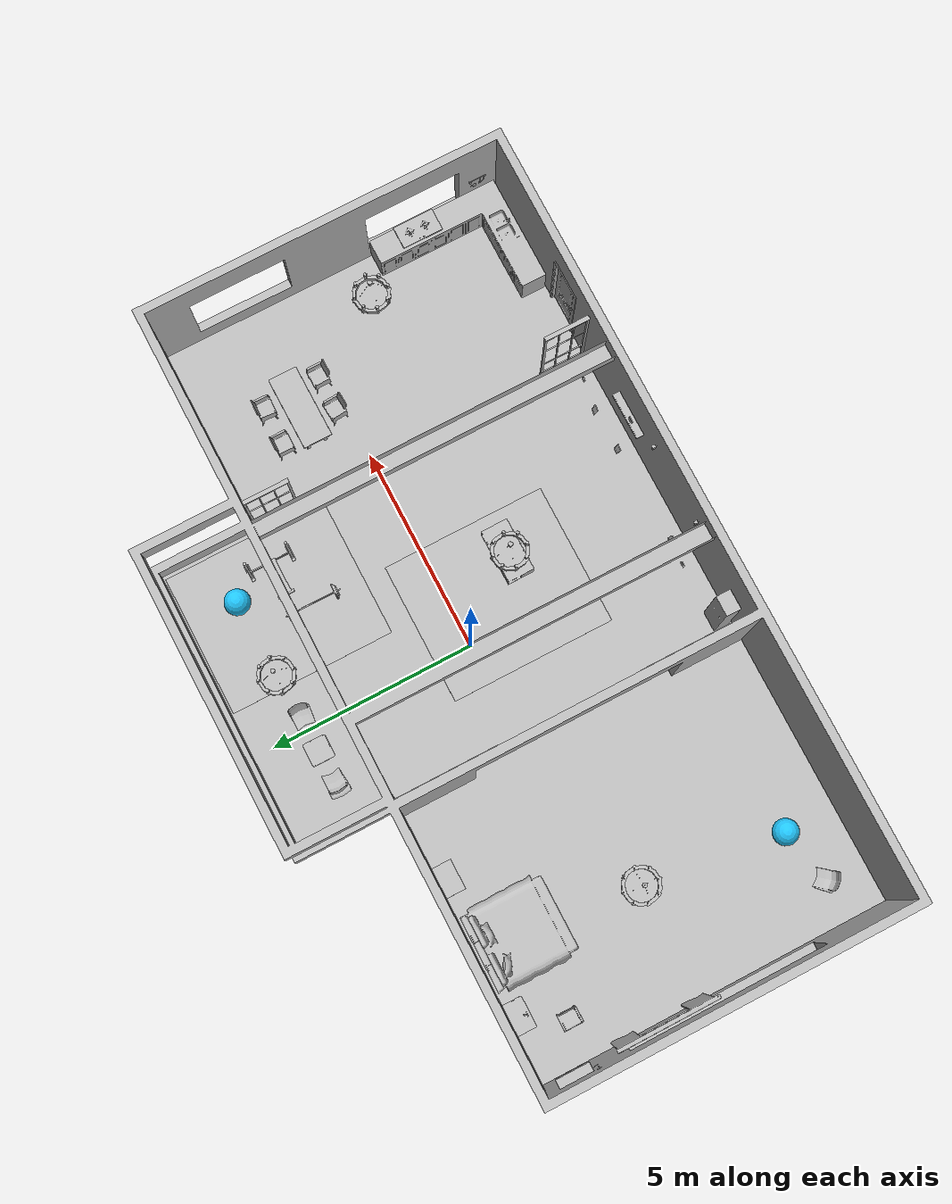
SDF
<sdf version="1.11">
 <world name="default">
  <plugin filename="gz-sim-physics-system" name="gz::sim::systems::Physics"/>
  <plugin filename="gz-sim-user-commands-system" name="gz::sim::systems::UserCommands"/>
  <plugin filename="gz-sim-scene-broadcaster-system" name="gz::sim::systems::SceneBroadcaster"/>
  <plugin filename="gz-sim-sensors-system" name="gz::sim::systems::Sensors">
   <render_engine>ogre2</render_engine>
  </plugin>
  <plugin filename="gz-sim-imu-system" name="gz::sim::systems::Imu"/>
  <physics name="1ms" type="ignored">
   <max_step_size>0.005</max_step_size>
   <real_time_factor>1.0</real_time_factor>
  </physics>
  <model name="AirconditionerA_01_001">
   <static>true</static>
   <include><uri>model://aws_robomaker_residential_AirconditionerA_01</uri></include>
   <pose>-9.199410 2.411230 2.084544 0 -0 0</pose>
  </model>
  <model name="AirconditionerB_01_001">
   <static>true</static>
   <include><uri>model://aws_robomaker_residential_AirconditionerB_01</uri></include>
   <pose>-2.004656 -5.226610 0.003485 0 -0 0</pose>
  </model>
  <model name="Ball_01_001">
   <static>true</static>
   <include><uri>model://aws_robomaker_residential_Ball_01</uri></include>
   <pose>3.295503 4.225674 0.318684 0 -0 0</pose>
  </model>
  <model name="Ball_01_003">
   <static>true</static>
   <include><uri>model://aws_robomaker_residential_Ball_01</uri></include>
   <pose>-6.945503 -4.22174 0.318684 0 -0 0</pose>
  </model>
  <model name="Bed_01_001">
   <static>true</static>
   <include><uri>model://aws_robomaker_residential_Bed_01</uri></include>
   <pose>-6.165067 2.030560 -0.000010 0 -0 0</pose>
  </model>
  <model name="NightStand_01_001">
   <static>true</static>
   <include><uri>model://aws_robomaker_residential_NightStand_01</uri></include>
   <pose>-7.725510 2.860420 0.005258 -0.000002 0 0</pose>
  </model>
  <model name="NightStand_01_002">
   <static>true</static>
   <include><uri>model://aws_robomaker_residential_NightStand_01</uri></include>
   <pose>-4.407341 2.860420 0.005256 0 0.000002 0</pose>
  </model>
  <model name="Board_01_001">
   <static>true</static>
   <include><uri>model://aws_robomaker_residential_Board_01</uri></include>
   <pose>2.779073 -5.392703 1.538173 0 -0 0</pose>
  </model>
  <model name="ChairA_01_001">
   <static>true</static>
   <include><uri>model://aws_robomaker_residential_ChairA_01</uri></include>
   <pose>7.11516 0.209028 0.024685 1e-06 -0 -1.55607</pose>
  </model>
  <model name="ChairA_01_002">
   <static>true</static>
   <include><uri>model://aws_robomaker_residential_ChairA_01</uri></include>
   <pose>6.25506 0.219468 0.011308 0 0 -1.50414</pose>
  </model>
  <model name="ChairA_01_003">
   <static>true</static>
   <include><uri>model://aws_robomaker_residential_ChairA_01</uri></include>
   <pose>6.06678 1.68075 0.01 0 -0 1.56986</pose>
  </model>
  <model name="ChairA_01_004">
   <static>true</static>
   <include><uri>model://aws_robomaker_residential_ChairA_01</uri></include>
   <pose>7.00277 1.67074 0 0 -0 1.52363</pose>
  </model>
  <model name="ChairA_01_005">
   <static>true</static>
   <include><uri>model://aws_robomaker_residential_ChairA_01</uri></include>
   <pose>-8.270940 1.916650 0.036650 0 -0 0</pose>
  </model>
  <model name="ChairD_01_001">
   <static>true</static>
   <include><uri>model://aws_robomaker_residential_ChairD_01</uri></include>
   <pose>-1.380775 4.104456 0 0 -0 0</pose>
  </model>
  <model name="ChairD_01_002">
   <static>true</static>
   <include><uri>model://aws_robomaker_residential_ChairD_01</uri></include>
   <pose>0.325214 4.104456 0 0 -0 -3.138741</pose>
  </model>
  <model name="ChairD_01_003">
   <static>true</static>
   <include><uri>model://aws_robomaker_residential_ChairD_01</uri></include>
   <pose>-8.270775 -4.504456 0 0 -0 0.869673</pose>
  </model>
  <model name="Chandelier_01_001">
   <static>true</static>
   <include><uri>model://aws_robomaker_residential_Chandelier_01</uri></include>
   <pose>1.221061 4.155740 1.295000 0 -0 0</pose>
  </model>
  <model name="Chandelier_01_002">
   <static>true</static>
   <include><uri>model://aws_robomaker_residential_Chandelier_01</uri></include>
   <pose>-6.451061 -0.692040 1.810000 0 -0 0</pose>
  </model>
  <model name="Chandelier_01_003">
   <static>true</static>
   <include><uri>model://aws_robomaker_residential_Chandelier_01</uri></include>
   <pose>7.824061 -1.59 1.7510000 0 -0 0</pose>
  </model>
  <model name="Chandelier_01_004">
   <static>true</static>
   <include><uri>model://aws_robomaker_residential_Chandelier_01</uri></include>
   <pose>1.221061 -1.592040 1.7873000 0 -0 0</pose>
  </model>
  <model name="Carpet_01_001">
   <static>true</static>
   <include><uri>model://aws_robomaker_residential_Carpet_01</uri></include>
   <pose>0.785050 -1.106647 0.001106 0 -0 0</pose>
  </model>
  <model name="Carpet_01_002">
   <static>true</static>
   <include><uri>model://aws_robomaker_residential_Carpet_01</uri></include>
   <pose>2.854050 3.45 0.000585 0 -0 0</pose>
  </model>
  <model name="CoffeeTable_01_001">
   <static>true</static>
   <include><uri>model://aws_robomaker_residential_CoffeeTable_01</uri></include>
   <pose>1.512301 -1.733438 0.041983 0.000000 0.000000 0.01000</pose>
  </model>
  <model name="CookingBench_01_001">
   <include><uri>model://aws_robomaker_residential_CookingBench_01</uri></include>
   <pose>9.038383 -3.351140 0.903610 0 -0 3.137133</pose>
   <static>true</static>
  </model>
  <model name="Curtain_01_001">
   <static>true</static>
   <include><uri>model://aws_robomaker_residential_Curtain_01</uri></include>
   <pose>-9.172642 0.203760 0 0 -0 0</pose>
  </model>
  <model name="KitchenTable_01_001">
   <static>true</static>
   <include><uri>model://aws_robomaker_residential_KitchenTable_01</uri></include>
   <pose>6.55269 0.951173 -0.000006 0 -0 -1.564130</pose>
  </model>
  <model name="BalconyTable_01_001">
   <static>true</static>
   <include><uri>model://aws_robomaker_residential_BalconyTable_01</uri></include>
   <pose>-0.556240 4.111241 0 0 -0 0</pose>
  </model>
  <model name="Door_01_001">
   <static>true</static>
   <include><uri>model://aws_robomaker_residential_Door_01</uri></include>
   <pose>6.001449 -5.549002 0 0 -0 0</pose>
  </model>
  <model name="Dumbbell_01_001">
   <static>true</static>
   <include><uri>model://aws_robomaker_residential_Dumbbell_01</uri></include>
   <pose>2.512849 2.717787 0.002183 0 -0 0</pose>
  </model>
  <model name="FitnessEquipment_01_001">
   <static>true</static>
   <include><uri>model://aws_robomaker_residential_FitnessEquipment_01</uri></include>
   <pose>3.484720 3.169104 0.003168 0 -0 0</pose>
  </model>
  <model name="FoldingDoor_01_001">
   <static>true</static>
   <include><uri>model://aws_robomaker_residential_FoldingDoor_01</uri></include>
   <pose>-2.461096 1.844219 0.041881 0 -0 0</pose>
  </model>
  <model name="FoldingDoor_01_002">
   <static>true</static>
   <include><uri>model://aws_robomaker_residential_FoldingDoor_01</uri></include>
   <pose>-2.461096 -4.053320 0.041881 0 -0 0</pose>
  </model>
  <model name="Handle_01_001">
   <static>true</static>
   <include><uri>model://aws_robomaker_residential_Handle_01</uri></include>
   <pose>5.724 -5.523 0.9938 0 -0 -3.1415</pose>
  </model>
  <model name="HouseWallB_01_001">
   <static>true</static>
   <include><uri>model://aws_robomaker_residential_HouseWallB_01</uri></include>
  </model>
  <model name="FloorB_01_001">
   <static>true</static>
   <include><uri>model://aws_robomaker_residential_FloorB_01</uri></include>
  </model>
  <model name="FoldingDoor_02_001">
   <static>true</static>
   <include><uri>model://aws_robomaker_residential_FoldingDoor_02</uri></include>
   <pose>4.674231 2.46451 0 0 -0 3.14159</pose>
  </model>
  <model name="FoldingDoor_02_002">
   <static>true</static>
   <include><uri>model://aws_robomaker_residential_FoldingDoor_02</uri></include>
   <pose>4.8912 -4.84968 0 0 -0 0</pose>
  </model>
  <model name="KitchenCabinet_01_001">
   <static>true</static>
   <include><uri>model://aws_robomaker_residential_KitchenCabinet_01</uri></include>
   <pose>8.002009 -3.836509 0.012068 0 -0 -3.140001</pose>
  </model>
  <model name="KitchenUtensils_01_001">
   <static>true</static>
   <include><uri>model://aws_robomaker_residential_KitchenUtensils_01</uri></include>
   <pose>9.285478 -5.021261 1.141805 0 -0 0</pose>
  </model>
  <model name="LightC_01_001">
   <static>true</static>
   <include><uri>model://aws_robomaker_residential_LightC_01</uri></include>
   <pose>1.769567 -5.4443710 2.000000 0 -0 0</pose>
  </model>
  <model name="LightC_01_002">
   <static>true</static>
   <include><uri>model://aws_robomaker_residential_LightC_01</uri></include>
   <pose>-0.138245 -5.4443710 2.000000 0 -0 0</pose>
  </model>
  <model name="DeskPortraitA_01">
   <static>true</static>
   <include><uri>model://aws_robomaker_residential_DeskPortraitA_01</uri></include>
   <pose>-0.036864 -5.110156 0.498660 0 -0 2.927784</pose>
  </model>
  <model name="DeskPortraitA_02">
   <static>true</static>
   <include><uri>model://aws_robomaker_residential_DeskPortraitA_02</uri></include>
   <pose>2.046082 -1.892926 0.0703880 -0.018328 -0.000441 1.576216</pose>
  </model>
  <model name="DeskPortraitC_01">
   <static>true</static>
   <include><uri>model://aws_robomaker_residential_DeskPortraitC_01</uri></include>
   <pose>-7.746377 2.731075 0.694620 0.000488 -0.000359 -0.055499</pose>
  </model>
  <model name="DeskPortraitC_02">
   <static>true</static>
   <include><uri>model://aws_robomaker_residential_DeskPortraitC_02</uri></include>
   <pose>0.964613 -1.586951 0.127676 0.001614 -0.000545 -1.578699</pose>
  </model>
  <model name="DeskPortraitD_01">
   <static>true</static>
   <include><uri>model://aws_robomaker_residential_DeskPortraitD_01</uri></include>
   <pose>2.645560 -5.376225 1.573738 0 -0 -3.112826</pose>
  </model>
  <model name="DeskPortraitD_02">
   <static>true</static>
   <include><uri>model://aws_robomaker_residential_DeskPortraitD_02</uri></include>
   <pose>-0.589211 -5.109890 0.192145 -0.000015 -0.000174 -3.112544</pose>
  </model>
  <model name="DeskPortraitD_03">
   <static>true</static>
   <include><uri>model://aws_robomaker_residential_DeskPortraitD_03</uri></include>
   <pose>1.826729 -1.464881 0.126208 0.000010 0.000006 -3.114380</pose>
  </model>
  <model name="DeskPortraitD_04">
   <static>true</static>
   <include><uri>model://aws_robomaker_residential_DeskPortraitD_04</uri></include>
   <pose>4.302132 -5.176568 0.202496 0.007118 -0.000001 3.046683</pose>
  </model>
  <model name="DeskPortraitB_01">
   <static>true</static>
   <include><uri>model://aws_robomaker_residential_DeskPortraitB_01</uri></include>
   <pose>3.547376 -5.083898 -0.012660 -0.336622 -0.000001 3.046741</pose>
  </model>
  <model name="DeskPortraitB_02">
   <static>true</static>
   <include><uri>model://aws_robomaker_residential_DeskPortraitB_02</uri></include>
   <pose>2.486270 -5.102525 -0.012660 -0.336621 0.000000 3.046798</pose>
  </model>
  <light name="LivingRoom_CeilingLight_0" type="point">
   <pose>1.194296 4.155759 2.2 0 -0 0</pose>
   <diffuse>0.5 0.5 0.5 1</diffuse>
   <specular>0.1 0.1 0.1 1</specular>
   <attenuation>
    <range>20</range>
    <constant>0.32</constant>
    <linear>0.01</linear>
    <quadratic>0.03</quadratic>
   </attenuation>
   <cast_shadows>0</cast_shadows>
   <direction>0 0 -1</direction>
  </light>
  <light name="LivingRoom_CeilingLight_1" type="point">
   <pose>1.194296 -1.589959 2.2 0 -0 0</pose>
   <diffuse>0.5 0.5 0.5 1</diffuse>
   <specular>0.1 0.1 0.1 1</specular>
   <attenuation>
    <range>20</range>
    <constant>0.05</constant>
    <linear>0.01</linear>
    <quadratic>0.09</quadratic>
   </attenuation>
   <cast_shadows>0</cast_shadows>
   <direction>0 0 -1</direction>
  </light>
  <light name="LivingRoom_WallLight_0" type="point">
   <pose>1.76956 -5.444370 2.2 0 -0 0</pose>
   <diffuse>0.24 0.24 0.24 1</diffuse>
   <specular>0.1 0.1 0.1 1</specular>
   <attenuation>
    <range>20</range>
    <constant>0.12</constant>
    <linear>0.00</linear>
    <quadratic>0.03</quadratic>
   </attenuation>
   <direction>0 0 -1</direction>
  </light>
  <light name="LivingRoom_WallLight_1" type="point">
   <pose>-0.13826 -5.444370 2.2 0 -0 0</pose>
   <diffuse>0.24 0.24 0.24 1</diffuse>
   <specular>0.1 0.1 0.1 1</specular>
   <attenuation>
    <range>20</range>
    <constant>0.12</constant>
    <linear>0.00</linear>
    <quadratic>0.03</quadratic>
   </attenuation>
   <direction>0 0 -1</direction>
  </light>
  <light name="TV_Light_0" type="point">
   <pose>0.8269 -4.939577 1.1 0 -0 0</pose>
   <diffuse>0.31372 0.31372 0.34901 1</diffuse>
   <specular>0.1 0.1 0.1 1</specular>
   <attenuation>
    <range>3</range>
    <constant>0.10</constant>
    <linear>0.04</linear>
    <quadratic>0.50</quadratic>
   </attenuation>
   <direction>0 0 -1</direction>
  </light>
  <light name="BedRoom_Portrait_Light_0" type="spot">
   <pose>-6.190379 -1.829697 1.5587 0.3 -0 0.0</pose>
   <diffuse>0.5 0.5 0.5 1</diffuse>
   <specular>0.1 0.1 0.1 1</specular>
   <attenuation>
    <range>20</range>
    <constant>0.50</constant>
    <linear>0.01</linear>
    <quadratic>0.00</quadratic>
   </attenuation>
   <spot><inner_angle>0.6</inner_angle><outer_angle>1.0</outer_angle><falloff>1.0</falloff></spot>
   <direction>0 0 -1</direction>
  </light>
  <light name="BedRoom_CeilingLight_0" type="point">
   <pose>-6.451061 -0.692040 2.000000 0 -0 0</pose>
   <diffuse>0.5 0.5 0.5 1</diffuse>
   <specular>0.1 0.1 0.1 1</specular>
   <attenuation>
    <range>20</range>
    <constant>0.32</constant>
    <linear>0.01</linear>
    <quadratic>0.03</quadratic>
   </attenuation>
   <cast_shadows>0</cast_shadows>
   <direction>0 0 -1</direction>
  </light>
  <light name="Kitchen_CeilingLight_0" type="point">
   <pose>7.8582 -1.5905 2.280000 0 -0 0</pose>
   <diffuse>0.5 0.5 0.5 1</diffuse>
   <specular>0.1 0.1 0.1 1</specular>
   <attenuation>
    <range>20</range>
    <constant>0.3</constant>
    <linear>0.01</linear>
    <quadratic>0.01</quadratic>
   </attenuation>
   <cast_shadows>0</cast_shadows>
   <direction>0 0 -1</direction>
  </light>
 </world>
</sdf>

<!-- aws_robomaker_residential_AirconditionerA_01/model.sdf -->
<sdf version="1.6">
  <model name="aws_robomaker_residential_AirconditionerA_01">
    <link name="link_AirconditionerA_01">
      <inertial>
        <mass>1</mass>
        <inertia>
          <ixx>0.01</ixx>
          <iyy>0.01</iyy>
          <izz>0.01</izz>
          <ixy>0.0</ixy>
          <ixz>0.0</ixz>
          <iyz>0.0</iyz>
        </inertia>
      </inertial>
      <collision name="collision">
        <geometry>
          <mesh>
            <uri>model://aws_robomaker_residential_AirconditionerA_01/meshes/aws_AirconditionerA_01_collision.DAE</uri>
            <scale>1 1 1</scale>
          </mesh>
        </geometry>
      </collision>
      <visual name="visual">
        <geometry>
          <mesh>
            <uri>model://aws_robomaker_residential_AirconditionerA_01/meshes/aws_AirconditionerA_01_visual.DAE</uri>
          </mesh>
        </geometry>
        <meta>
          <layer> 1 </layer>
        </meta>
      </visual>
    </link>
    <static>1</static>
  </model>
</sdf>

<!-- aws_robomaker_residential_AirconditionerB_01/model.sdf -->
<sdf version="1.6">
  <model name="aws_robomaker_residential_AirconditionerB_01">
    <link name="link_AirconditionerB_01">
      <inertial>
        <mass>1</mass>
        <inertia>
          <ixx>0.01</ixx>
          <iyy>0.01</iyy>
          <izz>0.01</izz>
          <ixy>0.0</ixy>
          <ixz>0.0</ixz>
          <iyz>0.0</iyz>
        </inertia>
      </inertial>
      <collision name="collision">
        <geometry>
          <mesh>
            <uri>model://aws_robomaker_residential_AirconditionerB_01/meshes/aws_AirconditionerB_01_collision.DAE</uri>
            <scale>1 1 1</scale>
          </mesh>
        </geometry>
      </collision>
      <visual name="visual">
        <geometry>
          <mesh>
            <uri>model://aws_robomaker_residential_AirconditionerB_01/meshes/aws_AirconditionerB_01_visual.DAE</uri>
          </mesh>
        </geometry>
        <meta>
          <layer> 1 </layer>
        </meta>
      </visual>
    </link>
  </model>
</sdf>

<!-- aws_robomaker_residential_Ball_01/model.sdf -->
<sdf version="1.6">
  <model name="aws_robomaker_residential_Ball_01">
    <link name="link_Ball_01">
      <inertial>
        <mass>0.12</mass>
        <inertia>
          <ixx>0.030752</ixx>
          <ixy>0</ixy>
          <ixz>0</ixz>
          <iyy>0.030752</iyy>
          <iyz>0</iyz>
          <izz>0.030752</izz>
        </inertia>
      </inertial>
      <collision name="collision">
        <geometry>
          <sphere>
            <radius>0.31 </radius>
          </sphere>
        </geometry>
        <surface>
          <friction>
            <ode>
              <mu>0.85</mu>
              <mu2>0.85</mu2>
            </ode>
          </friction>
          <contact>
            <ode>
              <kd>8500</kd>
              <max_vel>5.1</max_vel>
            </ode>
          </contact>
        </surface>
      </collision>
      <visual name="visual">
        <geometry>
          <sphere>
            <radius>0.31 </radius>
          </sphere>
        </geometry>
        <material>
          <diffuse>0.12 0.76 0.97 1</diffuse>
          <ambient>0.03 0.21 0.27 1</ambient>
        </material>
        <meta>
          <layer> 1 </layer>
        </meta>
      </visual>
    </link>
  </model>
</sdf>

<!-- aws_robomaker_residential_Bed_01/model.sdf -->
<sdf version="1.6">
  <model name="aws_robomaker_residential_Bed_01">
    <link name="link_Bed_01">
      <inertial>
        <mass>22.6</mass>
        <inertia>
          <ixx>0.01</ixx>
          <iyy>0.01</iyy>
          <izz>0.01</izz>
          <ixy>0.0</ixy>
          <ixz>0.0</ixz>
          <iyz>0.0</iyz>
        </inertia>
      </inertial>
      <collision name="collision">
        <geometry>
          <mesh>
            <uri>model://aws_robomaker_residential_Bed_01/meshes/aws_Bed_01_collision.DAE</uri>
            <scale>1 1 1</scale>
          </mesh>
        </geometry>
      </collision>
      <visual name="visual">
        <geometry>
          <mesh>
            <uri>model://aws_robomaker_residential_Bed_01/meshes/aws_Bed_01_visual.DAE</uri>
          </mesh>
        </geometry>
        <meta>
          <layer> 1 </layer>
        </meta>
      </visual>
    </link>
    <static>1</static>
  </model>
</sdf>

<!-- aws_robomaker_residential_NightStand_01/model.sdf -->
<sdf version="1.6">
  <model name="aws_robomaker_residential_NightStand_01">
    <link name="link_NightStand_01">
      <inertial>
        <mass>13.6</mass>
        <inertia>
          <ixx>0.6165</ixx>
          <ixy>0</ixy>
          <ixz>0</ixz>
          <iyy>1.29664</iyy>
          <iyz>0</iyz>
          <izz>0.7706</izz>
        </inertia>
      </inertial>
      <collision name="collision">
        <geometry>
          <mesh>
            <uri>model://aws_robomaker_residential_NightStand_01/meshes/aws_NightStand_01_collision.DAE</uri>
            <scale>1 1 1</scale>
          </mesh>
        </geometry>
      </collision>
      <visual name="visual">
        <geometry>
          <mesh>
            <uri>model://aws_robomaker_residential_NightStand_01/meshes/aws_NightStand_01_visual.DAE</uri>
          </mesh>
        </geometry>
        <meta>
          <layer> 1 </layer>
        </meta>
      </visual>
    </link>
    <static>1</static>
  </model>
</sdf>

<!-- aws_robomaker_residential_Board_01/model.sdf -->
<sdf version="1.6">
  <model name="aws_robomaker_residential_Board_01">
    <link name="link_Board_01">
      <inertial>
        <mass>1</mass>
        <inertia>
          <ixx>0.01</ixx>
          <iyy>0.01</iyy>
          <izz>0.01</izz>
          <ixy>0.0</ixy>
          <ixz>0.0</ixz>
          <iyz>0.0</iyz>
        </inertia>
      </inertial>
      <collision name="collision">
        <geometry>
          <mesh>
            <uri>model://aws_robomaker_residential_Board_01/meshes/aws_Board_01_collision.DAE</uri>
            <scale>1 1 1</scale>
          </mesh>
        </geometry>
      </collision>
      <visual name="visual">
        <geometry>
          <mesh>
            <uri>model://aws_robomaker_residential_Board_01/meshes/aws_Board_01_visual.DAE</uri>
          </mesh>
        </geometry>
        <meta>
          <layer> 2 </layer>
        </meta>
      </visual>
    </link>
    <static>1</static>
  </model>
</sdf>

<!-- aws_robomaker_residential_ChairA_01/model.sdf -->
<sdf version="1.6">
  <model name="aws_robomaker_residential_ChairA_01">
    <link name="link_ChairA_01">
      <inertial>
        <mass>7.5</mass>
        <inertia>
          <ixy>0</ixy>
          <ixz>0</ixz>
          <iyz>0</iyz>
          <ixx>0.217</ixx>
          <iyy>0.217</iyy>
          <izz>0.067</izz>
        </inertia>
      </inertial>
      <collision name="collision">
        <geometry>
          <mesh>
            <uri>model://aws_robomaker_residential_ChairA_01/meshes/aws_ChairA_01_collision.DAE</uri>
            <scale>1 1 1</scale>
          </mesh>
        </geometry>
      </collision>
      <visual name="visual">
        <geometry>
          <mesh>
            <uri>model://aws_robomaker_residential_ChairA_01/meshes/aws_ChairA_01_visual.DAE</uri>
          </mesh>
        </geometry>
        <meta>
          <layer> 1 </layer>
        </meta>
      </visual>
    </link>
  </model>
</sdf>

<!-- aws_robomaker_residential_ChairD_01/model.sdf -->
<sdf version="1.6">
  <model name="aws_robomaker_residential_ChairD_01">
    <link name="link_ChairD_01">
      <inertial>
        <mass>4.5</mass>
        <inertia>
          <ixy>0</ixy>
          <ixz>0</ixz>
          <iyz>0</iyz>
          <ixx>0.217</ixx>
          <iyy>0.217</iyy>
          <izz>0.067</izz>
        </inertia>
      </inertial>
      <collision name="collision">
        <geometry>
          <mesh>
            <uri>model://aws_robomaker_residential_ChairD_01/meshes/aws_ChairD_01_collision.DAE</uri>
            <scale>1 1 1</scale>
          </mesh>
        </geometry>
      </collision>
      <visual name="visual">
        <geometry>
          <mesh>
            <uri>model://aws_robomaker_residential_ChairD_01/meshes/aws_ChairD_01_visual.DAE</uri>
          </mesh>
        </geometry>
        <meta>
          <layer> 1 </layer>
        </meta>
      </visual>
    </link>
  </model>
</sdf>

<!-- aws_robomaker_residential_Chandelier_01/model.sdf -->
<sdf version="1.6">
  <model name="aws_robomaker_residential_Chandelier_01">
    <link name="link_Chandelier_01">
      <inertial>
        <mass>1</mass>
        <inertia>
          <ixx>0.01</ixx>
          <iyy>0.01</iyy>
          <izz>0.01</izz>
          <ixy>0.0</ixy>
          <ixz>0.0</ixz>
          <iyz>0.0</iyz>
        </inertia>
      </inertial>
      <collision name="collision">
        <geometry>
          <mesh>
            <uri>model://aws_robomaker_residential_Chandelier_01/meshes/aws_Chandelier_01_collision.DAE</uri>
            <scale>1 1 1</scale>
          </mesh>
        </geometry>
      </collision>
      <visual name="visual">
        <geometry>
          <mesh>
            <uri>model://aws_robomaker_residential_Chandelier_01/meshes/aws_Chandelier_01_visual.DAE</uri>
          </mesh>
        </geometry>
        <meta>
          <layer> 2 </layer>
        </meta>
      </visual>
    </link>
    <static>1</static>
  </model>
</sdf>

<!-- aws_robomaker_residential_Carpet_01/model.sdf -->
<sdf version="1.6">
  <model name="aws_robomaker_residential_Carpet_01">
    <link name="link_Carpet_01">
      <inertial>
        <mass>8.1</mass>
        <inertia>
          <ixx>0.01</ixx>
          <iyy>0.01</iyy>
          <izz>0.01</izz>
          <ixy>0.0</ixy>
          <ixz>0.0</ixz>
          <iyz>0.0</iyz>
        </inertia>
      </inertial>
      <collision name="collision">
        <geometry>
          <mesh>
            <uri>model://aws_robomaker_residential_Carpet_01/meshes/aws_Carpet_01_collision.DAE</uri>
            <scale>1 1 0.95</scale>
          </mesh>
        </geometry>
        <surface>
          <friction>
            <ode>
              <mu>100</mu>
              <mu2>50</mu2>
            </ode>
          </friction>
          <contact>
            <ode>

            </ode>
          </contact>
        </surface>
        <pose>0 0 -0.01 0 0 0 </pose>
      </collision>
      <visual name="visual">
        <geometry>
          <mesh>
            <uri>model://aws_robomaker_residential_Carpet_01/meshes/aws_Carpet_01_visual.DAE</uri>
          </mesh>
        </geometry>
        <meta>
          <layer> 1 </layer>
        </meta>
      </visual>
    </link>
    <static>1</static>
  </model>
</sdf>

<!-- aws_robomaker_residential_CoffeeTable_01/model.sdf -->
<sdf version="1.6">
  <model name="aws_robomaker_residential_CoffeeTable_01">
    <link name="link_CoffeeTable_01">
      <inertial>
        <mass>21.7</mass>
        <inertia>
          <ixx>0.8137499999999998</ixx>
          <ixy>0</ixy>
          <ixz>0</ixz>
          <iyy>2.76675</iyy>
          <iyz>0</iyz>
          <izz>3.254</izz>
        </inertia>
      </inertial>
      <collision name="collision">
        <geometry>
          <mesh>
            <uri>model://aws_robomaker_residential_CoffeeTable_01/meshes/aws_CoffeeTable_01_collision.DAE</uri>
            <scale>1 1 1</scale>
          </mesh>
        </geometry>
        <surface>
          <contact>
            <ode>
              <max_vel>0.01</max_vel>
            </ode>
          </contact>
        </surface>
      </collision>
      <visual name="visual">
        <geometry>
          <mesh>
            <uri>model://aws_robomaker_residential_CoffeeTable_01/meshes/aws_CoffeeTable_01_visual.DAE</uri>
          </mesh>
        </geometry>
        <meta>
          <layer> 1 </layer>
        </meta>
      </visual>
    </link>
    <static>1</static>
  </model>
</sdf>

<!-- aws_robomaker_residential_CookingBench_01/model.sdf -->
<sdf version="1.6">
  <model name="aws_robomaker_residential_CookingBench_01">
    <link name="link_CookingBench_01">
      <inertial>
        <mass>1</mass>
        <inertia>
          <ixx>0.01</ixx>
          <iyy>0.01</iyy>
          <izz>0.01</izz>
          <ixy>0.0</ixy>
          <ixz>0.0</ixz>
          <iyz>0.0</iyz>
        </inertia>
      </inertial>
      <collision name="collision">
        <geometry>
          <mesh>
            <uri>model://aws_robomaker_residential_CookingBench_01/meshes/aws_CookingBench_01_collision.DAE</uri>
            <scale>1 1 1</scale>
          </mesh>
        </geometry>
      </collision>
      <visual name="visual">
        <geometry>
          <mesh>
            <uri>model://aws_robomaker_residential_CookingBench_01/meshes/aws_CookingBench_01_visual.DAE</uri>
          </mesh>
        </geometry>
        <meta>
          <layer> 1 </layer>
        </meta>
      </visual>
    </link>
  </model>
</sdf>

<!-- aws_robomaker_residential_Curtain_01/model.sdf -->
<sdf version="1.6">
  <model name="aws_robomaker_residential_Curtain_01">
    <link name="link_Curtain_01">
      <inertial>
        <mass>1</mass>
        <inertia>
          <ixx>0.01</ixx>
          <iyy>0.01</iyy>
          <izz>0.01</izz>
          <ixy>0.0</ixy>
          <ixz>0.0</ixz>
          <iyz>0.0</iyz>
        </inertia>
      </inertial>
      <collision name="collision">
        <geometry>
          <mesh>
            <uri>model://aws_robomaker_residential_Curtain_01/meshes/aws_Curtain_01_collision.DAE</uri>
            <scale>1 1 1</scale>
          </mesh>
        </geometry>
      </collision>
      <visual name="visual">
        <geometry>
          <mesh>
            <uri>model://aws_robomaker_residential_Curtain_01/meshes/aws_Curtain_01_visual.DAE</uri>
          </mesh>
        </geometry>
        <meta>
          <layer> 2 </layer>
        </meta>
      </visual>
    </link>
    <static>1</static>
  </model>
</sdf>

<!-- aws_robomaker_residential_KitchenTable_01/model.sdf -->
<sdf version="1.6">
  <model name="aws_robomaker_residential_KitchenTable_01">
    <link name="link_KitchenTable_01">
      <inertial>
        <mass>12.3</mass>
        <inertia>
          <ixx>0.01</ixx>
          <iyy>0.01</iyy>
          <izz>0.01</izz>
          <ixy>0.0</ixy>
          <ixz>0.0</ixz>
          <iyz>0.0</iyz>
        </inertia>
      </inertial>
      <collision name="collision">
        <geometry>
          <mesh>
            <uri>model://aws_robomaker_residential_KitchenTable_01/meshes/aws_KitchenTable_01_collision.DAE</uri>
            <scale>1 1 1</scale>
          </mesh>
        </geometry>
      </collision>
      <visual name="visual">
        <geometry>
          <mesh>
            <uri>model://aws_robomaker_residential_KitchenTable_01/meshes/aws_KitchenTable_01_visual.DAE</uri>
          </mesh>
        </geometry>
        <meta>
          <layer> 1 </layer>
        </meta>
      </visual>
    </link>
  </model>
</sdf>

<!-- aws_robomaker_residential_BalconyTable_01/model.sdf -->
<sdf version="1.6">
  <model name="aws_robomaker_residential_BalconyTable_01">
    <link name="link_BalconyTable_01">
      <inertial>
        <mass>15</mass>
        <inertia>
          <ixx>0.01</ixx>
          <iyy>0.01</iyy>
          <izz>0.01</izz>
          <ixy>0.0</ixy>
          <ixz>0.0</ixz>
          <iyz>0.0</iyz>
        </inertia>
      </inertial>
      <collision name="collision">
        <geometry>
          <mesh>
            <uri>model://aws_robomaker_residential_BalconyTable_01/meshes/aws_BalconyTable_01_collision.DAE</uri>
            <scale>1 1 1</scale>
          </mesh>
        </geometry>
      </collision>
      <visual name="visual">
        <geometry>
          <mesh>
            <uri>model://aws_robomaker_residential_BalconyTable_01/meshes/aws_BalconyTable_01_visual.DAE</uri>
          </mesh>
        </geometry>
        <meta>
          <layer> 1 </layer>
        </meta>
      </visual>
    </link>
  </model>
</sdf>

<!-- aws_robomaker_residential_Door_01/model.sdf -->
<sdf version="1.6">
  <model name="aws_robomaker_residential_Door_01">
    <link name="link_Door_01">
      <inertial>
        <mass>1</mass>
        <inertia>
          <ixx>0.01</ixx>
          <iyy>0.01</iyy>
          <izz>0.01</izz>
          <ixy>0.0</ixy>
          <ixz>0.0</ixz>
          <iyz>0.0</iyz>
        </inertia>
      </inertial>
      <collision name="collision">
        <geometry>
          <mesh>
            <uri>model://aws_robomaker_residential_Door_01/meshes/aws_Door_01_collision.DAE</uri>
            <scale>1 1 1</scale>
          </mesh>
        </geometry>
      </collision>
      <visual name="visual">
        <geometry>
          <mesh>
            <uri>model://aws_robomaker_residential_Door_01/meshes/aws_Door_01_visual.DAE</uri>
          </mesh>
        </geometry>
        <meta>
          <layer> 2 </layer>
        </meta>
      </visual>
    </link>
    <static>1</static>
  </model>
</sdf>

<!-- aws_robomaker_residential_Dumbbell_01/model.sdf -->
<sdf version="1.6">
  <model name="aws_robomaker_residential_Dumbbell_01">
    <link name="link_Dumbbell_01">
      <inertial>
        <mass>80</mass>
        <inertia>
          <ixx>14.601</ixx>
          <ixy>0</ixy>
          <ixz>0</ixz>
          <iyy>1.0</iyy>
          <iyz>0</iyz>
          <izz>14.601</izz>
        </inertia>
      </inertial>
      <collision name="collision">
        <geometry>
          <mesh>
            <uri>model://aws_robomaker_residential_Dumbbell_01/meshes/aws_Dumbbell_01_collision.DAE</uri>
            <scale>1 1 1</scale>
          </mesh>
        </geometry>
        <max_contacts>10</max_contacts>
        <surface>
          <contact>
            <ode />
          </contact>
          <bounce />
          <friction>
            <torsional>
              <ode />
            </torsional>
            <ode />
          </friction>
        </surface>
      </collision>
      <visual name="visual">
        <geometry>
          <mesh>
            <uri>model://aws_robomaker_residential_Dumbbell_01/meshes/aws_Dumbbell_01_visual.DAE</uri>
          </mesh>
        </geometry>
        <meta>
          <layer> 1 </layer>
        </meta>
      </visual>
    </link>
    <static>1</static>
  </model>
</sdf>

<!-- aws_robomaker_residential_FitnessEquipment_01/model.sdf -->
<sdf version="1.6">
  <model name="aws_robomaker_residential_FitnessEquipment_01">
    <link name="link_FitnessEquipment_01">
      <inertial>
        <mass>80</mass>
        <inertia>
          <ixx>0.01</ixx>
          <iyy>0.01</iyy>
          <izz>0.01</izz>
          <ixy>0.0</ixy>
          <ixz>0.0</ixz>
          <iyz>0.0</iyz>
        </inertia>
      </inertial>
      <collision name="collision">
        <geometry>
          <mesh>
            <uri>model://aws_robomaker_residential_FitnessEquipment_01/meshes/aws_FitnessEquipment_01_collision.DAE</uri>
            <scale>1 1 1</scale>
          </mesh>
        </geometry>
      </collision>
      <visual name="visual">
        <geometry>
          <mesh>
            <uri>model://aws_robomaker_residential_FitnessEquipment_01/meshes/aws_FitnessEquipment_01_visual.DAE</uri>
          </mesh>
        </geometry>
        <meta>
          <layer> 1 </layer>
        </meta>
      </visual>
    </link>
    <static>1</static>
  </model>
</sdf>

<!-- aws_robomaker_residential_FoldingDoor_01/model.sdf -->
<sdf version="1.6">
  <model name="aws_robomaker_residential_FoldingDoor_01">
    <link name="link_FoldingDoor_01">
      <inertial>
        <mass>1</mass>
        <inertia>
          <ixx>0.01</ixx>
          <iyy>0.01</iyy>
          <izz>0.01</izz>
          <ixy>0.0</ixy>
          <ixz>0.0</ixz>
          <iyz>0.0</iyz>
        </inertia>
      </inertial>
      <collision name="collision">
        <geometry>
          <mesh>
            <uri>model://aws_robomaker_residential_FoldingDoor_01/meshes/aws_FoldingDoor_01_collision.DAE</uri>
            <scale>1 1 1</scale>
          </mesh>
        </geometry>
      </collision>
      <visual name="visual">
        <geometry>
          <mesh>
            <uri>model://aws_robomaker_residential_FoldingDoor_01/meshes/aws_FoldingDoor_01_visual.DAE</uri>
          </mesh>
        </geometry>
        <meta>
          <layer> 2 </layer>
        </meta>
      </visual>
    </link>
    <static>1</static>
  </model>
</sdf>

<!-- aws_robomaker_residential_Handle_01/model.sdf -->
<sdf version="1.6">
  <model name="aws_robomaker_residential_Handle_01">
    <link name="link_Handle_01">
      <inertial>
        <mass>1</mass>
        <inertia>
          <ixx>0.01</ixx>
          <iyy>0.01</iyy>
          <izz>0.01</izz>
          <ixy>0.0</ixy>
          <ixz>0.0</ixz>
          <iyz>0.0</iyz>
        </inertia>
      </inertial>
      <collision name="collision">
        <geometry>
          <mesh>
            <uri>model://aws_robomaker_residential_Handle_01/meshes/aws_Handle_01_collision.DAE</uri>
            <scale>1 1 1</scale>
          </mesh>
        </geometry>
      </collision>
      <visual name="visual">
        <geometry>
          <mesh>
            <uri>model://aws_robomaker_residential_Handle_01/meshes/aws_Handle_01_visual.DAE</uri>
          </mesh>
        </geometry>
        <meta>
          <layer> 2 </layer>
        </meta>
      </visual>
    </link>
    <static>1</static>
  </model>
</sdf>

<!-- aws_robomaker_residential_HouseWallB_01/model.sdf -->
<sdf version="1.6">
  <model name="aws_robomaker_residential_HouseWallB_01">
    <link name="link_HouseWallB_01">
      <inertial>
        <mass>1</mass>
        <inertia>
          <ixx>0.01</ixx>
          <iyy>0.01</iyy>
          <izz>0.01</izz>
          <ixy>0.0</ixy>
          <ixz>0.0</ixz>
          <iyz>0.0</iyz>
        </inertia>
      </inertial>
      <collision name="collision">
        <geometry>
          <mesh>
            <uri>model://aws_robomaker_residential_HouseWallB_01/meshes/aws_HouseWallB_01_collision.DAE</uri>
            <scale>1 1 1</scale>
          </mesh>
        </geometry>
      </collision>
      <visual name="visual">
        <geometry>
          <mesh>
            <uri>model://aws_robomaker_residential_HouseWallB_01/meshes/aws_HouseWallB_01_visual.DAE</uri>
          </mesh>
        </geometry>
        <meta>
          <layer> 2 </layer>
        </meta>
      </visual>
    </link>
    <static>1</static>
  </model>
</sdf>

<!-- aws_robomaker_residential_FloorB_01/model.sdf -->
<sdf version="1.6">
  <model name="aws_robomaker_residential_FloorB_01">
    <link name="link_FloorB_01">
      <inertial>
        <mass>100</mass>
        <inertia>
          <ixx>0.01</ixx>
          <iyy>0.01</iyy>
          <izz>0.01</izz>
          <ixy>0.0</ixy>
          <ixz>0.0</ixz>
          <iyz>0.0</iyz>
        </inertia>
      </inertial>
      <collision name="collision">
        <geometry>
          <mesh>
            <uri>model://aws_robomaker_residential_FloorB_01/meshes/aws_FloorB_01_collision.DAE</uri>
            <scale>1 1 0.9</scale>
          </mesh>
        </geometry>
        <surface>
          <friction>
            <ode>
              <mu>100</mu>
              <mu2>50</mu2>
            </ode>
          </friction>
        </surface>
      </collision>
      <visual name="visual">
        <geometry>
          <mesh>
            <uri>model://aws_robomaker_residential_FloorB_01/meshes/aws_FloorB_01_visual.DAE</uri>
          </mesh>
        </geometry>
        <meta>
          <layer> 1 </layer>
        </meta>
      </visual>
    </link>
    <static>1</static>
  </model>
</sdf>

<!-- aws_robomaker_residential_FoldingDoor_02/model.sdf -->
<sdf version="1.6">
  <model name="aws_robomaker_residential_FoldingDoor_02">
    <link name="link_FoldingDoor_02">
      <inertial>
        <mass>1</mass>
        <inertia>
          <ixx>0.01</ixx>
          <iyy>0.01</iyy>
          <izz>0.01</izz>
          <ixy>0.0</ixy>
          <ixz>0.0</ixz>
          <iyz>0.0</iyz>
        </inertia>
      </inertial>
      <collision name="collision">
        <geometry>
          <mesh>
            <uri>model://aws_robomaker_residential_FoldingDoor_02/meshes/aws_FoldingDoor_02_collision.DAE</uri>
            <scale>1 1 1</scale>
          </mesh>
        </geometry>
      </collision>
      <visual name="visual">
        <geometry>
          <mesh>
            <uri>model://aws_robomaker_residential_FoldingDoor_02/meshes/aws_FoldingDoor_02_visual.DAE</uri>
          </mesh>
        </geometry>
        <meta>
          <layer> 2 </layer>
        </meta>
      </visual>
    </link>
    <static>1</static>
  </model>
</sdf>

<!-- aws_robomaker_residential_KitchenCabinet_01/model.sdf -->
<sdf version="1.6">
  <model name="aws_robomaker_residential_KitchenCabinet_01">
    <link name="link_KitchenCabinet_01">
      <inertial>
        <mass>1</mass>
        <inertia>
          <ixx>0.01</ixx>
          <iyy>0.01</iyy>
          <izz>0.01</izz>
          <ixy>0.0</ixy>
          <ixz>0.0</ixz>
          <iyz>0.0</iyz>
        </inertia>
      </inertial>
      <collision name="collision">
        <laser_retro>0</laser_retro>
        <max_contacts>10</max_contacts>
        <geometry>
          <mesh>
            <uri>model://aws_robomaker_residential_KitchenCabinet_01/meshes/aws_KitchenCabinet_01_collision.DAE</uri>
            <scale>1 1 1</scale>
          </mesh>
        </geometry>
      </collision>
      <visual name="visual">
        <geometry>
          <mesh>
            <uri>model://aws_robomaker_residential_KitchenCabinet_01/meshes/aws_KitchenCabinet_01_visual.DAE</uri>
          </mesh>
        </geometry>
        <meta>
          <layer> 1 </layer>
        </meta>
      </visual>
    </link>
    <static>1</static>
  </model>
</sdf>

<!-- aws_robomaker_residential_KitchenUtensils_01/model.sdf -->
<sdf version="1.6">
  <model name="aws_robomaker_residential_KitchenUtensils_01">
    <link name="link_KitchenUtensils_01">
      <inertial>
        <mass>1</mass>
        <inertia>
          <ixx>0.01</ixx>
          <iyy>0.01</iyy>
          <izz>0.01</izz>
          <ixy>0.0</ixy>
          <ixz>0.0</ixz>
          <iyz>0.0</iyz>
        </inertia>
      </inertial>
      <collision name="collision">
        <geometry>
          <mesh>
            <uri>model://aws_robomaker_residential_KitchenUtensils_01/meshes/aws_KitchenUtensils_01_collision.DAE</uri>
            <scale>1 1 1</scale>
          </mesh>
        </geometry>
      </collision>
      <visual name="visual">
        <geometry>
          <mesh>
            <uri>model://aws_robomaker_residential_KitchenUtensils_01/meshes/aws_KitchenUtensils_01_visual.DAE</uri>
          </mesh>
        </geometry>
        <meta>
          <layer> 1 </layer>
        </meta>
      </visual>
    </link>
    <static>1</static>
  </model>
</sdf>

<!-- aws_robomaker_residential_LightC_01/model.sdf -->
<sdf version="1.6">
  <model name="aws_robomaker_residential_LightC_01">
    <link name="link_LightC_01">
      <inertial>
        <mass>1</mass>
        <inertia>
          <ixx>0.01</ixx>
          <iyy>0.01</iyy>
          <izz>0.01</izz>
          <ixy>0.0</ixy>
          <ixz>0.0</ixz>
          <iyz>0.0</iyz>
        </inertia>
      </inertial>
      <collision name="collision">
        <geometry>
          <mesh>
            <uri>model://aws_robomaker_residential_LightC_01/meshes/aws_LightC_01_collision.DAE</uri>
            <scale>1 1 1</scale>
          </mesh>
        </geometry>
      </collision>
      <visual name="visual">
        <geometry>
          <mesh>
            <uri>model://aws_robomaker_residential_LightC_01/meshes/aws_LightC_01_visual.DAE</uri>
          </mesh>
        </geometry>
        <meta>
          <layer> 2 </layer>
        </meta>
      </visual>
    </link>
    <static>1</static>
  </model>
</sdf>

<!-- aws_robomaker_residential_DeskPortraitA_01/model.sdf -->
<sdf version="1.6">
  <model name="aws_robomaker_residential_DeskPortraitA_01">
    <link name="link_DeskPortraitA_01">
      <inertial>
        <mass>1</mass>
        <inertia>
          <ixx>0.0835</ixx>
          <ixy>0</ixy>
          <ixz>0</ixz>
          <iyy>0.16</iyy>
          <iyz>0</iyz>
          <izz>0.08347</izz>
        </inertia>
      </inertial>
      <collision name="collision">
        <geometry>
          <mesh>
            <uri>model://aws_robomaker_residential_DeskPortraitA_01/meshes/aws_DeskPortraitA_01_collision.DAE</uri>
            <scale>1 1 1</scale>
          </mesh>
        </geometry>
      </collision>
      <visual name="visual">
        <geometry>
          <mesh>
            <uri>model://aws_robomaker_residential_DeskPortraitA_01/meshes/aws_DeskPortraitA_01_visual.DAE</uri>
          </mesh>
        </geometry>
        <meta>
          <layer> 1 </layer>
        </meta>
      </visual>
    </link>
  </model>
</sdf>

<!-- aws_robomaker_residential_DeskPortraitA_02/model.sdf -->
<sdf version="1.6">
  <model name="aws_robomaker_residential_DeskPortraitA_02">
    <link name="link_DeskPortraitA_02">
      <inertial>
        <mass>1</mass>
        <inertia>
          <ixx>0.0835</ixx>
          <ixy>0</ixy>
          <ixz>0</ixz>
          <iyy>0.16</iyy>
          <iyz>0</iyz>
          <izz>0.08347</izz>
        </inertia>
      </inertial>
      <collision name="collision">
        <geometry>
          <mesh>
            <uri>model://aws_robomaker_residential_DeskPortraitA_02/meshes/aws_DeskPortraitA_01_collision.DAE</uri>
            <scale>1 1 1</scale>
          </mesh>
        </geometry>
      </collision>
      <visual name="visual">
        <geometry>
          <mesh>
            <uri>model://aws_robomaker_residential_DeskPortraitA_02/meshes/aws_DeskPortraitA_01_visual.DAE</uri>
          </mesh>
        </geometry>
        <meta>
          <layer> 1 </layer>
        </meta>
      </visual>
    </link>
  </model>
</sdf>

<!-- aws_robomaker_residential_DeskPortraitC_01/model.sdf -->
<sdf version="1.6">
  <model name="aws_robomaker_residential_DeskPortraitC_01">
    <link name="link_DeskPortraitC_01">
      <inertial>
        <mass>1</mass>
        <inertia>
          <ixx>0.0835</ixx>
          <ixy>0</ixy>
          <ixz>0</ixz>
          <iyy>0.16</iyy>
          <iyz>0</iyz>
          <izz>0.08347</izz>
        </inertia>
      </inertial>
      <collision name="collision">
        <geometry>
          <mesh>
            <uri>model://aws_robomaker_residential_DeskPortraitC_01/meshes/aws_DeskPortraitC_01_collision.DAE</uri>
            <scale>1 1 1</scale>
          </mesh>
        </geometry>
      </collision>
      <visual name="visual">
        <geometry>
          <mesh>
            <uri>model://aws_robomaker_residential_DeskPortraitC_01/meshes/aws_DeskPortraitC_01_visual.DAE</uri>
          </mesh>
        </geometry>
        <meta>
          <layer> 1 </layer>
        </meta>
      </visual>
    </link>
  </model>
</sdf>

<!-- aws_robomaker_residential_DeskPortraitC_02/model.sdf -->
<sdf version="1.6">
  <model name="aws_robomaker_residential_DeskPortraitC_02">
    <link name="link_DeskPortraitC_02">
      <inertial>
        <mass>1</mass>
        <inertia>
          <ixx>0.0835</ixx>
          <ixy>0</ixy>
          <ixz>0</ixz>
          <iyy>0.16</iyy>
          <iyz>0</iyz>
          <izz>0.08347</izz>
        </inertia>
      </inertial>
      <collision name="collision">
        <geometry>
          <mesh>
            <uri>model://aws_robomaker_residential_DeskPortraitC_02/meshes/aws_DeskPortraitC_01_collision.DAE</uri>
            <scale>1 1 1</scale>
          </mesh>
        </geometry>
      </collision>
      <visual name="visual">
        <geometry>
          <mesh>
            <uri>model://aws_robomaker_residential_DeskPortraitC_02/meshes/aws_DeskPortraitC_01_visual.DAE</uri>
          </mesh>
        </geometry>
        <meta>
          <layer> 1 </layer>
        </meta>
      </visual>
    </link>
  </model>
</sdf>

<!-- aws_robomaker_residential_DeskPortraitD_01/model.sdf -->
<sdf version="1.6">
  <model name="aws_robomaker_residential_DeskPortraitD_01">
    <link name="link_DeskPortraitD_01">
      <inertial>
        <mass>0.4</mass>
        <inertia>
          <ixx>0.0616</ixx>
          <ixy>0</ixy>
          <ixz>0</ixz>
          <iyy>0.1313</iyy>
          <iyz>0</iyz>
          <izz>0.0803</izz>
        </inertia>
      </inertial>
      <collision name="collision">
        <geometry>
          <mesh>
            <uri>model://aws_robomaker_residential_DeskPortraitD_01/meshes/aws_DeskPortraitD_01_collision.DAE</uri>
            <scale>1 1 1</scale>
          </mesh>
        </geometry>
        <surface>
          <friction>
            <ode>
              <mu>0.7</mu>
              <mu2>0.7</mu2>
            </ode>
          </friction>
          <contact>
            <ode>
              <kd>28500</kd>
            </ode>
          </contact>
        </surface>
      </collision>
      <visual name="visual">
        <geometry>
          <mesh>
            <uri>model://aws_robomaker_residential_DeskPortraitD_01/meshes/aws_DeskPortraitD_01_visual.DAE</uri>
          </mesh>
        </geometry>
        <meta>
          <layer> 1 </layer>
        </meta>
      </visual>
    </link>
  </model>
</sdf>

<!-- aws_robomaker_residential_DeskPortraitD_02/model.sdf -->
<sdf version="1.6">
  <model name="aws_robomaker_residential_DeskPortraitD_02">
    <link name="link_DeskPortraitD_02">
      <inertial>
        <mass>0.4</mass>
        <inertia>
          <ixx>0.0616</ixx>
          <ixy>0</ixy>
          <ixz>0</ixz>
          <iyy>0.1313</iyy>
          <iyz>0</iyz>
          <izz>0.0803</izz>
        </inertia>
      </inertial>
      <collision name="collision">
        <geometry>
          <mesh>
            <uri>model://aws_robomaker_residential_DeskPortraitD_02/meshes/aws_DeskPortraitD_01_collision.DAE</uri>
            <scale>1 1 1</scale>
          </mesh>
        </geometry>
        <surface>
          <friction>
            <ode>
              <mu>0.7</mu>
              <mu2>0.7</mu2>
            </ode>
          </friction>
          <contact>
            <ode>
              <kd>28500</kd>
            </ode>
          </contact>
        </surface>
      </collision>
      <visual name="visual">
        <geometry>
          <mesh>
            <uri>model://aws_robomaker_residential_DeskPortraitD_02/meshes/aws_DeskPortraitD_01_visual.DAE</uri>
          </mesh>
        </geometry>
        <meta>
          <layer> 1 </layer>
        </meta>
      </visual>
    </link>
  </model>
</sdf>

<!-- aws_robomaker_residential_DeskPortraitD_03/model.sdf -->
<sdf version="1.6">
  <model name="aws_robomaker_residential_DeskPortraitD_03">
    <link name="link_DeskPortraitD_03">
      <inertial>
        <mass>0.4</mass>
        <inertia>
          <ixx>0.0616</ixx>
          <ixy>0</ixy>
          <ixz>0</ixz>
          <iyy>0.1313</iyy>
          <iyz>0</iyz>
          <izz>0.0803</izz>
        </inertia>
      </inertial>
      <collision name="collision">
        <geometry>
          <mesh>
            <uri>model://aws_robomaker_residential_DeskPortraitD_03/meshes/aws_DeskPortraitD_01_collision.DAE</uri>
            <scale>1 1 1</scale>
          </mesh>
        </geometry>
        <surface>
          <friction>
            <ode>
              <mu>0.7</mu>
              <mu2>0.7</mu2>
            </ode>
          </friction>
          <contact>
            <ode>
              <kd>28500</kd>
            </ode>
          </contact>
        </surface>
      </collision>
      <visual name="visual">
        <geometry>
          <mesh>
            <uri>model://aws_robomaker_residential_DeskPortraitD_03/meshes/aws_DeskPortraitD_01_visual.DAE</uri>
          </mesh>
        </geometry>
        <meta>
          <layer> 1 </layer>
        </meta>
      </visual>
    </link>
  </model>
</sdf>

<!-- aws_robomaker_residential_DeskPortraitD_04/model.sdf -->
<sdf version="1.6">
  <model name="aws_robomaker_residential_DeskPortraitD_04">
    <link name="link_DeskPortraitD_04">
      <inertial>
        <mass>0.4</mass>
        <inertia>
          <ixx>0.0616</ixx>
          <ixy>0</ixy>
          <ixz>0</ixz>
          <iyy>0.1313</iyy>
          <iyz>0</iyz>
          <izz>0.0803</izz>
        </inertia>
      </inertial>
      <collision name="collision">
        <geometry>
          <mesh>
            <uri>model://aws_robomaker_residential_DeskPortraitD_04/meshes/aws_DeskPortraitD_01_collision.DAE</uri>
            <scale>1 1 1</scale>
          </mesh>
        </geometry>
        <surface>
          <friction>
            <ode>
              <mu>0.7</mu>
              <mu2>0.7</mu2>
            </ode>
          </friction>
          <contact>
            <ode>
              <kd>28500</kd>
            </ode>
          </contact>
        </surface>
      </collision>
      <visual name="visual">
        <geometry>
          <mesh>
            <uri>model://aws_robomaker_residential_DeskPortraitD_04/meshes/aws_DeskPortraitD_01_visual.DAE</uri>
          </mesh>
        </geometry>
        <meta>
          <layer> 1 </layer>
        </meta>
      </visual>
    </link>
  </model>
</sdf>

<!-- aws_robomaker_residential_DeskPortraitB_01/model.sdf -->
<sdf version="1.6">
  <model name="aws_robomaker_residential_DeskPortraitB_01">
    <link name="link_DeskPortraitB_01">
      <inertial>
        <mass>1</mass>
        <inertia>
          <ixx>0.0135</ixx>
          <ixy>0</ixy>
          <ixz>0</ixz>
          <iyy>0.02</iyy>
          <iyz>0</iyz>
          <izz>0.01347</izz>
        </inertia>
      </inertial>
      <collision name="collision">
        <geometry>
          <mesh>
            <uri>model://aws_robomaker_residential_DeskPortraitB_01/meshes/aws_DeskPortraitB_01_collision.DAE</uri>
            <scale>1 1 1</scale>
          </mesh>
        </geometry>
      </collision>
      <visual name="visual">
        <geometry>
          <mesh>
            <uri>model://aws_robomaker_residential_DeskPortraitB_01/meshes/aws_DeskPortraitB_01_visual.DAE</uri>
          </mesh>
        </geometry>
        <meta>
          <layer> 1 </layer>
        </meta>
      </visual>
    </link>
  </model>
</sdf>

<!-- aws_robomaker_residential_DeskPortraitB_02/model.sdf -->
<sdf version="1.6">
  <model name="aws_robomaker_residential_DeskPortraitB_02">
    <link name="link_DeskPortraitB_02">
      <inertial>
        <mass>1</mass>
        <inertia>
          <ixx>0.0135</ixx>
          <ixy>0</ixy>
          <ixz>0</ixz>
          <iyy>0.02</iyy>
          <iyz>0</iyz>
          <izz>0.01347</izz>
        </inertia>
      </inertial>
      <collision name="collision">
        <geometry>
          <mesh>
            <uri>model://aws_robomaker_residential_DeskPortraitB_02/meshes/aws_DeskPortraitB_01_collision.DAE</uri>
            <scale>1 1 1</scale>
          </mesh>
        </geometry>
      </collision>
      <visual name="visual">
        <geometry>
          <mesh>
            <uri>model://aws_robomaker_residential_DeskPortraitB_02/meshes/aws_DeskPortraitB_01_visual.DAE</uri>
          </mesh>
        </geometry>
        <meta>
          <layer> 1 </layer>
        </meta>
      </visual>
    </link>
  </model>
</sdf>
